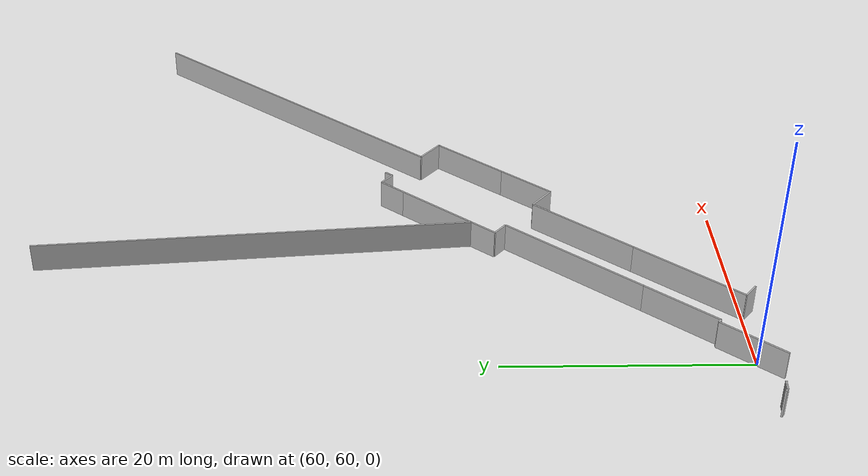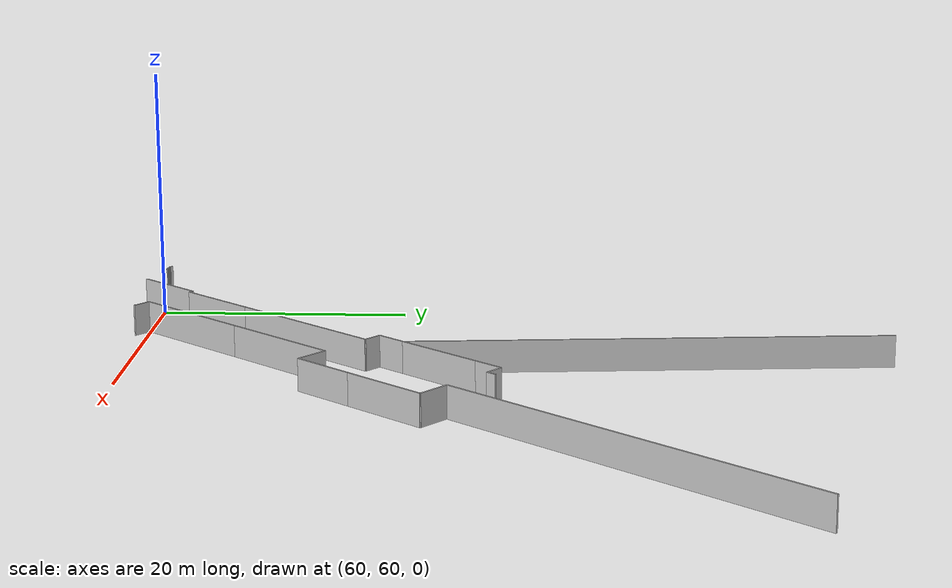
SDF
<sdf version="1.6">
 <model name="sps_2005">
  <static>1</static>
  <allow_auto_disable>0</allow_auto_disable>
  <link name="Wall58">
   <collision name="collision"><geometry><box><size>0.350354 0.15 2.5</size></box></geometry></collision>
   <visual name="visual">
    <geometry><box><size>0.350354 0.15 2.5</size></box></geometry>
    <transparency>0.0</transparency>
   </visual>
   <pose>62.3785 62.6861 1.25 0 0 -0.702523</pose>
  </link>
  <link name="Wall59">
   <collision name="collision"><geometry><box><size>13.6817 0.15 2.5</size></box></geometry></collision>
   <visual name="visual">
    <geometry><box><size>13.6817 0.15 2.5</size></box></geometry>
    <transparency>0.0</transparency>
   </visual>
   <pose>71.4438 73.1119 1.25 0 0 -2.27383</pose>
  </link>
  <link name="Wall60">
   <collision name="collision"><geometry><box><size>6.97376 0.15 2.5</size></box></geometry></collision>
   <visual name="visual">
    <geometry><box><size>6.97376 0.15 2.5</size></box></geometry>
    <transparency>0.0</transparency>
   </visual>
   <pose>64.7666 65.233 1.25 0 0 -2.27383</pose>
  </link>
  <link name="Wall61">
   <collision name="collision"><geometry><box><size>2.50061 0.15 2.5</size></box></geometry></collision>
   <visual name="visual">
    <geometry><box><size>2.50061 0.15 2.5</size></box></geometry>
    <transparency>0.0</transparency>
   </visual>
   <pose>81.9957 87.8829 1.25 0 0 -2.27365</pose>
  </link>
  <link name="Wall62">
   <collision name="collision"><geometry><box><size>5.28264 0.15 2.5</size></box></geometry></collision>
   <visual name="visual">
    <geometry><box><size>5.28264 0.15 2.5</size></box></geometry>
    <transparency>0.0</transparency>
   </visual>
   <pose>82.7617 75.9493 1.25 0 -0 0.867764</pose>
  </link>
  <link name="Wall63">
   <collision name="collision"><geometry><box><size>7.21753 0.15 2.5</size></box></geometry></collision>
   <visual name="visual">
    <geometry><box><size>7.21753 0.15 2.5</size></box></geometry>
    <transparency>0.0</transparency>
   </visual>
   <pose>86.8026 80.7174 1.25 0 -0 0.867764</pose>
  </link>
  <link name="Wall65">
   <collision name="collision"><geometry><box><size>0.806139 0.15 2.5</size></box></geometry></collision>
   <visual name="visual">
    <geometry><box><size>0.806139 0.15 2.5</size></box></geometry>
    <transparency>0.0</transparency>
   </visual>
   <pose>84.2089 88.174 1.25 0 0 -2.2738</pose>
  </link>
  <link name="Wall140">
   <collision name="collision"><geometry><box><size>1.51018 0.15 2.5</size></box></geometry></collision>
   <visual name="visual">
    <geometry><box><size>1.51018 0.15 2.5</size></box></geometry>
    <transparency>0.0</transparency>
   </visual>
   <pose>66.2469 59.4087 1.25 0 0 -0.702713</pose>
  </link>
  <link name="Wall141">
   <collision name="collision"><geometry><box><size>1.50024 0.15 2.5</size></box></geometry></collision>
   <visual name="visual">
    <geometry><box><size>1.50024 0.15 2.5</size></box></geometry>
    <transparency>0.0</transparency>
   </visual>
   <pose>75.2942 78.8154 1.25 0 0 -0.70251</pose>
  </link>
  <link name="Wall249">
   <collision name="collision"><geometry><box><size>5.99993 0.15 2.5</size></box></geometry></collision>
   <visual name="visual">
    <geometry><box><size>5.99993 0.15 2.5</size></box></geometry>
    <transparency>0.0</transparency>
   </visual>
   <pose>60.3054 60.5105 1.25 0 -0 0.867846</pose>
  </link>
  <link name="Wall379">
   <collision name="collision"><geometry><box><size>2.66028 0.15 2.5</size></box></geometry></collision>
   <visual name="visual">
    <geometry><box><size>2.66028 0.15 2.5</size></box></geometry>
    <transparency>0.0</transparency>
   </visual>
   <pose>88.1209 84.3303 1.25 0 -0 2.43873</pose>
  </link>
  <link name="Wall471">
   <collision name="collision"><geometry><box><size>10.4816 0.15 2.5</size></box></geometry></collision>
   <visual name="visual">
    <geometry><box><size>10.4816 0.15 2.5</size></box></geometry>
    <transparency>0.0</transparency>
   </visual>
   <pose>69.0589 63.8949 1.25 0 -0 0.867786</pose>
  </link>
  <link name="Wall472">
   <collision name="collision"><geometry><box><size>10.1733 0.15 2.5</size></box></geometry></collision>
   <visual name="visual">
    <geometry><box><size>10.1733 0.15 2.5</size></box></geometry>
    <transparency>0.0</transparency>
   </visual>
   <pose>75.7358 71.7737 1.25 0 -0 0.867786</pose>
  </link>
  <link name="Wall473">
   <collision name="collision"><geometry><box><size>2.66041 0.15 2.5</size></box></geometry></collision>
   <visual name="visual">
    <geometry><box><size>2.66041 0.15 2.5</size></box></geometry>
    <transparency>0.0</transparency>
   </visual>
   <pose>80.0392 74.7943 1.25 0 0 -0.703025</pose>
  </link>
  <link name="Wall642">
   <collision name="collision"><geometry><box><size>0.299507 0.15 2.5</size></box></geometry></collision>
   <visual name="visual">
    <geometry><box><size>0.299507 0.15 2.5</size></box></geometry>
    <transparency>0.0</transparency>
   </visual>
   <pose>54.1125 59.4667 1.25 0 0 -0.704471</pose>
  </link>
  <link name="Wall643">
   <collision name="collision"><geometry><box><size>2.5007 0.15 2.5</size></box></geometry></collision>
   <visual name="visual">
    <geometry><box><size>2.5007 0.15 2.5</size></box></geometry>
    <transparency>0.0</transparency>
   </visual>
   <pose>75.5302 80.2538 1.25 0 0 -2.27404</pose>
  </link>
  <link name="Wall644">
   <collision name="collision"><geometry><box><size>1.50045 0.15 2.5</size></box></geometry></collision>
   <visual name="visual">
    <geometry><box><size>1.50045 0.15 2.5</size></box></geometry>
    <transparency>0.0</transparency>
   </visual>
   <pose>83.3761 88.3517 1.25 0 -0 2.43829</pose>
  </link>
  <link name="Wall645">
   <collision name="collision"><geometry><box><size>32.5434 0.15 2.5</size></box></geometry></collision>
   <visual name="visual">
    <geometry><box><size>32.5434 0.15 2.5</size></box></geometry>
    <transparency>0.0</transparency>
   </visual>
   <pose>97.6261 97.6037 1.25 0 -0 0.867779</pose>
  </link>
  <link name="Wall1126">
   <collision name="collision"><geometry><box><size>0.299202 0.15 2.5</size></box></geometry></collision>
   <visual name="visual">
    <geometry><box><size>0.299202 0.15 2.5</size></box></geometry>
    <transparency>0.0</transparency>
   </visual>
   <pose>54.1128 59.4668 1.25 0 0 -0.704533</pose>
  </link>
  <link name="Wall1392">
   <collision name="collision"><geometry><box><size>7.49982 0.15 2.5</size></box></geometry></collision>
   <visual name="visual">
    <geometry><box><size>7.49982 0.15 2.5</size></box></geometry>
    <transparency>0.0</transparency>
   </visual>
   <pose>78.7634 84.0683 1.25 0 0 -2.2738</pose>
  </link>
  <link name="Wall1393">
   <collision name="collision"><geometry><box><size>37.282 0.15 2.5</size></box></geometry></collision>
   <visual name="visual">
    <geometry><box><size>37.282 0.15 2.5</size></box></geometry>
    <transparency>0.0</transparency>
   </visual>
   <pose>74.8054 99.7853 1.25 0 -0 1.65317</pose>
  </link>
  <link name="Wall10162">
   <collision name="collision"><geometry><box><size>0.160446 0.15 2.5</size></box></geometry></collision>
   <visual name="visual">
    <geometry><box><size>0.160446 0.15 2.5</size></box></geometry>
    <transparency>0.0</transparency>
   </visual>
   <pose>55.1038 59.2831 1.25 0 -0 2.99883</pose>
  </link>
  <link name="Wall10163">
   <collision name="collision"><geometry><box><size>0.160275 0.15 2.5</size></box></geometry></collision>
   <visual name="visual">
    <geometry><box><size>0.160275 0.15 2.5</size></box></geometry>
    <transparency>0.0</transparency>
   </visual>
   <pose>54.9449 59.3046 1.25 0 -0 3.01521</pose>
  </link>
  <link name="Wall10164">
   <collision name="collision"><geometry><box><size>0.160329 0.15 2.5</size></box></geometry></collision>
   <visual name="visual">
    <geometry><box><size>0.160329 0.15 2.5</size></box></geometry>
    <transparency>0.0</transparency>
   </visual>
   <pose>54.7858 59.3235 1.25 0 -0 3.03173</pose>
  </link>
  <link name="Wall10165">
   <collision name="collision"><geometry><box><size>0.160312 0.15 2.5</size></box></geometry></collision>
   <visual name="visual">
    <geometry><box><size>0.160312 0.15 2.5</size></box></geometry>
    <transparency>0.0</transparency>
   </visual>
   <pose>54.6263 59.3398 1.25 0 -0 3.0478</pose>
  </link>
  <link name="Wall10166">
   <collision name="collision"><geometry><box><size>0.160527 0.15 2.5</size></box></geometry></collision>
   <visual name="visual">
    <geometry><box><size>0.160527 0.15 2.5</size></box></geometry>
    <transparency>0.0</transparency>
   </visual>
   <pose>54.4665 59.3536 1.25 0 -0 3.06319</pose>
  </link>
  <link name="Wall10167">
   <collision name="collision"><geometry><box><size>0.160092 0.15 2.5</size></box></geometry></collision>
   <visual name="visual">
    <geometry><box><size>0.160092 0.15 2.5</size></box></geometry>
    <transparency>0.0</transparency>
   </visual>
   <pose>54.3065 59.3648 1.25 0 -0 3.08017</pose>
  </link>
 </model>
</sdf>
